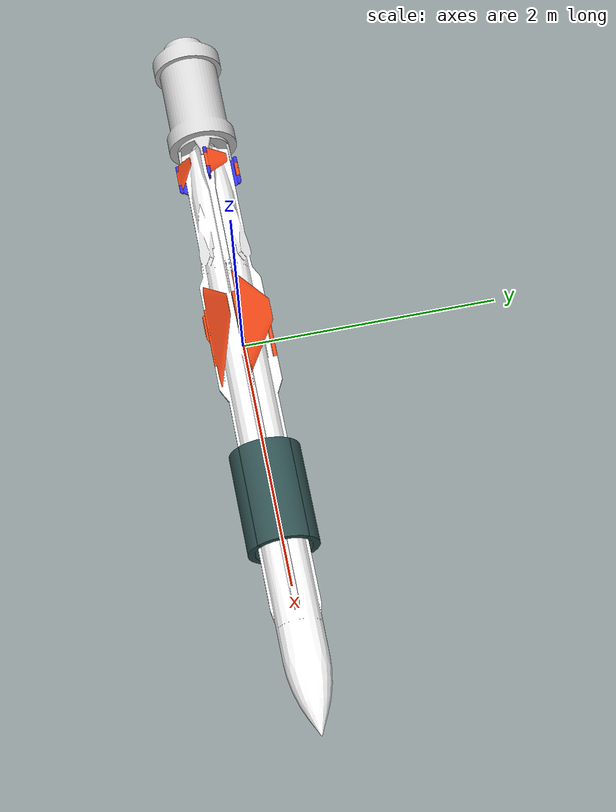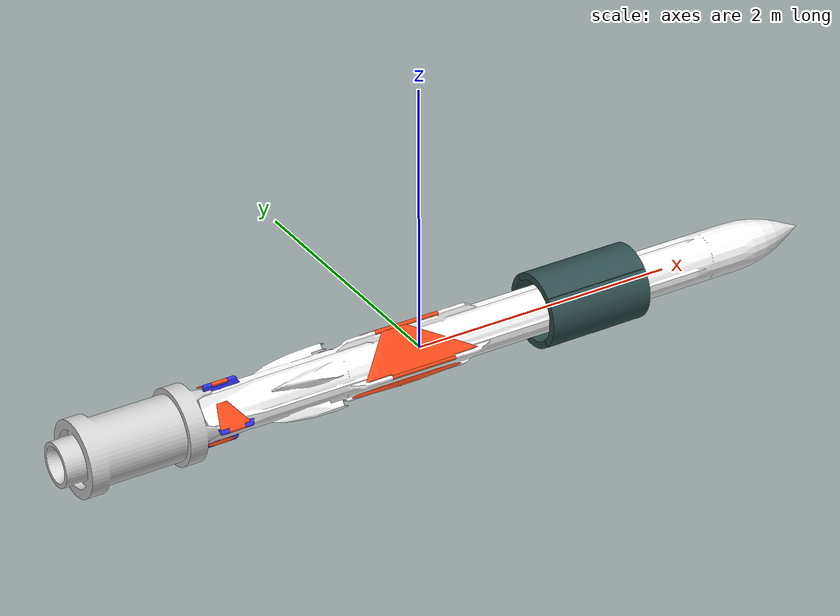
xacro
<?xml version="1.0" ?>
<robot name="ex_mm40b3" xmlns:xacro="http://www.ros.org/wiki/xacro">

<xacro:include filename="$(find ex_mm40b3_description)/urdf/materials.xacro" />
<xacro:include filename="$(find ex_mm40b3_description)/urdf/ex_mm40b3.trans" />
<xacro:include filename="$(find ex_mm40b3_description)/urdf/ex_mm40b3.gazebo" />

<link name="base_link">
  <inertial>
    <origin xyz="0.5582187363868036 -9.491428765021313e-11 -7.544864658374226e-10" rpy="0 0 0"/>
    <mass value="564.9695328358481"/>
    <inertia ixx="13.560396" iyy="1088.286862" izz="1088.286862" ixy="-0.0" iyz="0.0" ixz="0.0"/>
  </inertial>
  <visual>
    <origin xyz="0 0 0" rpy="0 0 0"/>
    <geometry>
      <mesh filename="package://ex_mm40b3_description/meshes/base_link.stl" scale="0.001 0.001 0.001"/>
    </geometry>
    <material name="white"/>
  </visual>
  <collision>
    <origin xyz="0 0 0" rpy="0 0 0"/>
    <geometry>
      <mesh filename="package://ex_mm40b3_description/meshes/base_link.stl" scale="0.001 0.001 0.001"/>
    </geometry>
  </collision>
</link>

<link name="FinHolder_1">
  <inertial>
    <origin xyz="0.01198993428751427 3.495693953659855e-06 0.03520370329433853" rpy="0 0 0"/>
    <mass value="0.6136418967408529"/>
    <inertia ixx="0.000219" iyy="0.004162" izz="0.003989" ixy="-0.0" iyz="-0.0" ixz="3.8e-05"/>
  </inertial>
  <visual>
    <origin xyz="1.561764 0.0 -0.18" rpy="0 0 0"/>
    <geometry>
      <mesh filename="package://ex_mm40b3_description/meshes/FinHolder_1.stl" scale="0.001 0.001 0.001"/>
    </geometry>
    <material name="blue"/>
  </visual>
  <collision>
    <origin xyz="1.561764 0.0 -0.18" rpy="0 0 0"/>
    <geometry>
      <mesh filename="package://ex_mm40b3_description/meshes/FinHolder_1.stl" scale="0.001 0.001 0.001"/>
    </geometry>
  </collision>
</link>

<link name="FinHolder_4">
  <inertial>
    <origin xyz="0.01198993428751427 -0.03520370414373866 3.495034387886701e-06" rpy="0 0 0"/>
    <mass value="0.6136418967408529"/>
    <inertia ixx="0.000219" iyy="0.003989" izz="0.004162" ixy="-3.8e-05" iyz="0.0" ixz="-0.0"/>
  </inertial>
  <visual>
    <origin xyz="1.561764 0.18 0.0" rpy="0 0 0"/>
    <geometry>
      <mesh filename="package://ex_mm40b3_description/meshes/FinHolder_4.stl" scale="0.001 0.001 0.001"/>
    </geometry>
    <material name="blue"/>
  </visual>
  <collision>
    <origin xyz="1.561764 0.18 0.0" rpy="0 0 0"/>
    <geometry>
      <mesh filename="package://ex_mm40b3_description/meshes/FinHolder_4.stl" scale="0.001 0.001 0.001"/>
    </geometry>
  </collision>
</link>

<link name="FinHolder_3">
  <inertial>
    <origin xyz="0.01198993428751427 -3.4958837879403273e-06 -0.035203704803304314" rpy="0 0 0"/>
    <mass value="0.6136418967408529"/>
    <inertia ixx="0.000219" iyy="0.004162" izz="0.003989" ixy="0.0" iyz="-0.0" ixz="-3.8e-05"/>
  </inertial>
  <visual>
    <origin xyz="1.561764 0.0 0.18" rpy="0 0 0"/>
    <geometry>
      <mesh filename="package://ex_mm40b3_description/meshes/FinHolder_3.stl" scale="0.001 0.001 0.001"/>
    </geometry>
    <material name="blue"/>
  </visual>
  <collision>
    <origin xyz="1.561764 0.0 0.18" rpy="0 0 0"/>
    <geometry>
      <mesh filename="package://ex_mm40b3_description/meshes/FinHolder_3.stl" scale="0.001 0.001 0.001"/>
    </geometry>
  </collision>
</link>

<link name="FinHolder_2">
  <inertial>
    <origin xyz="0.01198993428751427 0.035203703953904264 -3.496543353653529e-06" rpy="0 0 0"/>
    <mass value="0.6136418967408529"/>
    <inertia ixx="0.000219" iyy="0.003989" izz="0.004162" ixy="3.8e-05" iyz="0.0" ixz="0.0"/>
  </inertial>
  <visual>
    <origin xyz="1.561764 -0.18 0.0" rpy="0 0 0"/>
    <geometry>
      <mesh filename="package://ex_mm40b3_description/meshes/FinHolder_2.stl" scale="0.001 0.001 0.001"/>
    </geometry>
    <material name="blue"/>
  </visual>
  <collision>
    <origin xyz="1.561764 -0.18 0.0" rpy="0 0 0"/>
    <geometry>
      <mesh filename="package://ex_mm40b3_description/meshes/FinHolder_2.stl" scale="0.001 0.001 0.001"/>
    </geometry>
  </collision>
</link>

<link name="Wing1_1">
  <inertial>
    <origin xyz="-0.04066620765985293 0.0807449272160705 -0.05243595158558506" rpy="0 0 0"/>
    <mass value="7.941525705671481"/>
    <inertia ixx="0.045859" iyy="0.280396" izz="0.29884" ixy="0.016465" iyz="0.020713" ixz="-0.010693"/>
  </inertial>
  <visual>
    <origin xyz="0.108536 0.0 -0.231018" rpy="0 0 0"/>
    <geometry>
      <mesh filename="package://ex_mm40b3_description/meshes/Wing1_1.stl" scale="0.001 0.001 0.001"/>
    </geometry>
    <material name="orange"/>
  </visual>
  <collision>
    <origin xyz="0.108536 0.0 -0.231018" rpy="0 0 0"/>
    <geometry>
      <mesh filename="package://ex_mm40b3_description/meshes/Wing1_1.stl" scale="0.001 0.001 0.001"/>
    </geometry>
  </collision>
</link>

<link name="Booster_1">
  <inertial>
    <origin xyz="-0.5309883305776795 1.2931271704902409e-09 7.783320420974786e-11" rpy="0 0 0"/>
    <mass value="138.76341026969325"/>
    <inertia ixx="6.064544" iyy="17.450475" izz="17.450475" ixy="-0.0" iyz="0.0" ixz="-0.0"/>
  </inertial>
  <visual>
    <origin xyz="1.741776 0.0 0.0" rpy="0 0 0"/>
    <geometry>
      <mesh filename="package://ex_mm40b3_description/meshes/Booster_1.stl" scale="0.001 0.001 0.001"/>
    </geometry>
    <material name="grey"/>
  </visual>
  <collision>
    <origin xyz="1.741776 0.0 0.0" rpy="0 0 0"/>
    <geometry>
      <mesh filename="package://ex_mm40b3_description/meshes/Booster_1.stl" scale="0.001 0.001 0.001"/>
    </geometry>
  </collision>
</link>

<link name="Wing1_2">
  <inertial>
    <origin xyz="-0.040666207659853376 -0.05189131189100127 -0.079906257497525" rpy="0 0 0"/>
    <mass value="7.941525705671481"/>
    <inertia ixx="0.045859" iyy="0.29884" izz="0.280396" ixy="-0.010693" iyz="-0.020713" ixz="-0.016465"/>
  </inertial>
  <visual>
    <origin xyz="0.108536 -0.231018 0.0" rpy="0 0 0"/>
    <geometry>
      <mesh filename="package://ex_mm40b3_description/meshes/Wing1_2.stl" scale="0.001 0.001 0.001"/>
    </geometry>
    <material name="orange"/>
  </visual>
  <collision>
    <origin xyz="0.108536 -0.231018 0.0" rpy="0 0 0"/>
    <geometry>
      <mesh filename="package://ex_mm40b3_description/meshes/Wing1_2.stl" scale="0.001 0.001 0.001"/>
    </geometry>
  </collision>
</link>

<link name="Wing1_3">
  <inertial>
    <origin xyz="-0.04066620765985307 -0.07990625683795603 0.051891311041601024" rpy="0 0 0"/>
    <mass value="7.941525705671481"/>
    <inertia ixx="0.045859" iyy="0.280396" izz="0.29884" ixy="-0.016465" iyz="0.020713" ixz="0.010693"/>
  </inertial>
  <visual>
    <origin xyz="0.108536 0.0 0.231018" rpy="0 0 0"/>
    <geometry>
      <mesh filename="package://ex_mm40b3_description/meshes/Wing1_3.stl" scale="0.001 0.001 0.001"/>
    </geometry>
    <material name="orange"/>
  </visual>
  <collision>
    <origin xyz="0.108536 0.0 0.231018" rpy="0 0 0"/>
    <geometry>
      <mesh filename="package://ex_mm40b3_description/meshes/Wing1_3.stl" scale="0.001 0.001 0.001"/>
    </geometry>
  </collision>
</link>

<link name="Wing1_4">
  <inertial>
    <origin xyz="-0.04066620765985285 0.051891311701170034 0.07990625598855573" rpy="0 0 0"/>
    <mass value="7.941525705671481"/>
    <inertia ixx="0.045859" iyy="0.29884" izz="0.280396" ixy="0.010693" iyz="-0.020713" ixz="0.016465"/>
  </inertial>
  <visual>
    <origin xyz="0.108536 0.231018 0.0" rpy="0 0 0"/>
    <geometry>
      <mesh filename="package://ex_mm40b3_description/meshes/Wing1_4.stl" scale="0.001 0.001 0.001"/>
    </geometry>
    <material name="orange"/>
  </visual>
  <collision>
    <origin xyz="0.108536 0.231018 0.0" rpy="0 0 0"/>
    <geometry>
      <mesh filename="package://ex_mm40b3_description/meshes/Wing1_4.stl" scale="0.001 0.001 0.001"/>
    </geometry>
  </collision>
</link>

<link name="Holder_1">
  <inertial>
    <origin xyz="-0.1999999917328792 -9.490927239922491e-11 0.03608121241836992" rpy="0 0 0"/>
    <mass value="12.085489344125179"/>
    <inertia ixx="0.161772" iyy="0.69521" izz="0.836017" ixy="-0.0" iyz="-0.0" ixz="-0.0"/>
  </inertial>
  <visual>
    <origin xyz="-1.514695 0.0 -0.187374" rpy="0 0 0"/>
    <geometry>
      <mesh filename="package://ex_mm40b3_description/meshes/Holder_1.stl" scale="0.001 0.001 0.001"/>
    </geometry>
    <material name="darkgrey"/>
  </visual>
  <collision>
    <origin xyz="-1.514695 0.0 -0.187374" rpy="0 0 0"/>
    <geometry>
      <mesh filename="package://ex_mm40b3_description/meshes/Holder_1.stl" scale="0.001 0.001 0.001"/>
    </geometry>
  </collision>
</link>

<link name="Holder_2">
  <inertial>
    <origin xyz="-0.1999999917328792 -0.03608121241836992 -9.490925871653939e-11" rpy="0 0 0"/>
    <mass value="12.085489344125179"/>
    <inertia ixx="0.161772" iyy="0.836017" izz="0.69521" ixy="0.0" iyz="0.0" ixz="-0.0"/>
  </inertial>
  <visual>
    <origin xyz="-1.514695 0.187374 0.0" rpy="0 0 0"/>
    <geometry>
      <mesh filename="package://ex_mm40b3_description/meshes/Holder_2.stl" scale="0.001 0.001 0.001"/>
    </geometry>
    <material name="darkgrey"/>
  </visual>
  <collision>
    <origin xyz="-1.514695 0.187374 0.0" rpy="0 0 0"/>
    <geometry>
      <mesh filename="package://ex_mm40b3_description/meshes/Holder_2.stl" scale="0.001 0.001 0.001"/>
    </geometry>
  </collision>
</link>

<link name="Holder_3">
  <inertial>
    <origin xyz="-0.1999999917328792 9.490924503385386e-11 -0.03608121241836992" rpy="0 0 0"/>
    <mass value="12.085489344125179"/>
    <inertia ixx="0.161772" iyy="0.69521" izz="0.836017" ixy="0.0" iyz="-0.0" ixz="0.0"/>
  </inertial>
  <visual>
    <origin xyz="-1.514695 0.0 0.187374" rpy="0 0 0"/>
    <geometry>
      <mesh filename="package://ex_mm40b3_description/meshes/Holder_3.stl" scale="0.001 0.001 0.001"/>
    </geometry>
    <material name="darkgrey"/>
  </visual>
  <collision>
    <origin xyz="-1.514695 0.0 0.187374" rpy="0 0 0"/>
    <geometry>
      <mesh filename="package://ex_mm40b3_description/meshes/Holder_3.stl" scale="0.001 0.001 0.001"/>
    </geometry>
  </collision>
</link>

<link name="Holder_4">
  <inertial>
    <origin xyz="-0.1999999917328792 0.03608121241836992 9.490923135116832e-11" rpy="0 0 0"/>
    <mass value="12.085489344125179"/>
    <inertia ixx="0.161772" iyy="0.836017" izz="0.69521" ixy="-0.0" iyz="-0.0" ixz="0.0"/>
  </inertial>
  <visual>
    <origin xyz="-1.514695 -0.187374 0.0" rpy="0 0 0"/>
    <geometry>
      <mesh filename="package://ex_mm40b3_description/meshes/Holder_4.stl" scale="0.001 0.001 0.001"/>
    </geometry>
    <material name="darkgrey"/>
  </visual>
  <collision>
    <origin xyz="-1.514695 -0.187374 0.0" rpy="0 0 0"/>
    <geometry>
      <mesh filename="package://ex_mm40b3_description/meshes/Holder_4.stl" scale="0.001 0.001 0.001"/>
    </geometry>
  </collision>
</link>

<link name="Fin_1">
  <inertial>
    <origin xyz="-0.015670038509134843 0.05105851518613127 -0.033157788278729644" rpy="0 0 0"/>
    <mass value="1.1914641784690367"/>
    <inertia ixx="0.003045" iyy="0.003419" izz="0.004631" ixy="0.000707" iyz="0.00136" ixz="-0.000459"/>
  </inertial>
  <visual>
    <origin xyz="1.561764 0.0 -0.235" rpy="0 0 0"/>
    <geometry>
      <mesh filename="package://ex_mm40b3_description/meshes/Fin_1.stl" scale="0.001 0.001 0.001"/>
    </geometry>
    <material name="orange"/>
  </visual>
  <collision>
    <origin xyz="1.561764 0.0 -0.235" rpy="0 0 0"/>
    <geometry>
      <mesh filename="package://ex_mm40b3_description/meshes/Fin_1.stl" scale="0.001 0.001 0.001"/>
    </geometry>
  </collision>
</link>

<link name="Fin_2">
  <inertial>
    <origin xyz="-0.015670038509135287 -0.03315778761916369 -0.05105880996392321" rpy="0 0 0"/>
    <mass value="1.1914641784690367"/>
    <inertia ixx="0.003045" iyy="0.004631" izz="0.003419" ixy="-0.000459" iyz="-0.00136" ixz="-0.000707"/>
  </inertial>
  <visual>
    <origin xyz="1.561764 -0.235 1.7e-05" rpy="0 0 0"/>
    <geometry>
      <mesh filename="package://ex_mm40b3_description/meshes/Fin_2.stl" scale="0.001 0.001 0.001"/>
    </geometry>
    <material name="orange"/>
  </visual>
  <collision>
    <origin xyz="1.561764 -0.235 1.7e-05" rpy="0 0 0"/>
    <geometry>
      <mesh filename="package://ex_mm40b3_description/meshes/Fin_2.stl" scale="0.001 0.001 0.001"/>
    </geometry>
  </collision>
</link>

<link name="Fin_3">
  <inertial>
    <origin xyz="-0.01567003850913551 -0.051058515375965514 0.033157786769763664" rpy="0 0 0"/>
    <mass value="1.1914641784690367"/>
    <inertia ixx="0.003045" iyy="0.003419" izz="0.004631" ixy="-0.000707" iyz="0.00136" ixz="0.000459"/>
  </inertial>
  <visual>
    <origin xyz="1.561764 0.0 0.235" rpy="0 0 0"/>
    <geometry>
      <mesh filename="package://ex_mm40b3_description/meshes/Fin_3.stl" scale="0.001 0.001 0.001"/>
    </geometry>
    <material name="orange"/>
  </visual>
  <collision>
    <origin xyz="1.561764 0.0 0.235" rpy="0 0 0"/>
    <geometry>
      <mesh filename="package://ex_mm40b3_description/meshes/Fin_3.stl" scale="0.001 0.001 0.001"/>
    </geometry>
  </collision>
</link>

<link name="Fin_4">
  <inertial>
    <origin xyz="-0.015670038509134843 0.03315778742932951 0.051058514526565395" rpy="0 0 0"/>
    <mass value="1.1914641784690367"/>
    <inertia ixx="0.003045" iyy="0.004631" izz="0.003419" ixy="0.000459" iyz="-0.00136" ixz="0.000707"/>
  </inertial>
  <visual>
    <origin xyz="1.561764 0.235 0.0" rpy="0 0 0"/>
    <geometry>
      <mesh filename="package://ex_mm40b3_description/meshes/Fin_4.stl" scale="0.001 0.001 0.001"/>
    </geometry>
    <material name="orange"/>
  </visual>
  <collision>
    <origin xyz="1.561764 0.235 0.0" rpy="0 0 0"/>
    <geometry>
      <mesh filename="package://ex_mm40b3_description/meshes/Fin_4.stl" scale="0.001 0.001 0.001"/>
    </geometry>
  </collision>
</link>

<joint name="fins_rev1" type="revolute">
  <origin xyz="-1.561764 0.0 0.18" rpy="0 0 0"/>
  <parent link="base_link"/>
  <child link="FinHolder_1"/>
  <axis xyz="-0.0 -0.0 1.0"/>
  <limit upper="0.349066" lower="-0.349066" effort="100" velocity="100"/>
</joint>

<joint name="fins_rev4" type="revolute">
  <origin xyz="-1.561764 -0.18 0.0" rpy="0 0 0"/>
  <parent link="base_link"/>
  <child link="FinHolder_4"/>
  <axis xyz="-0.0 -1.0 -0.0"/>
  <limit upper="0.349066" lower="-0.349066" effort="100" velocity="100"/>
</joint>

<joint name="fins_rev3" type="revolute">
  <origin xyz="-1.561764 0.0 -0.18" rpy="0 0 0"/>
  <parent link="base_link"/>
  <child link="FinHolder_3"/>
  <axis xyz="-0.0 0.0 -1.0"/>
  <limit upper="0.349066" lower="-0.349066" effort="100" velocity="100"/>
</joint>

<joint name="fins_rev2" type="revolute">
  <origin xyz="-1.561764 0.18 0.0" rpy="0 0 0"/>
  <parent link="base_link"/>
  <child link="FinHolder_2"/>
  <axis xyz="-0.0 1.0 0.0"/>
  <limit upper="0.349066" lower="-0.349066" effort="100" velocity="100"/>
</joint>

<joint name="wings_fold1" type="revolute">
  <origin xyz="-0.108536 0.0 0.231018" rpy="0 0 0"/>
  <parent link="base_link"/>
  <child link="Wing1_1"/>
  <axis xyz="1.0 -0.0 -0.0"/>
  <limit upper="2.146755" lower="0.0" effort="100" velocity="100"/>
</joint>

<joint name="booster_fixing" type="fixed">
  <origin xyz="-1.741776 0.0 0.0" rpy="0 0 0"/>
  <parent link="base_link"/>
  <child link="Booster_1"/>
</joint>

<joint name="wings_fold2" type="revolute">
  <origin xyz="-0.108536 0.231018 0.0" rpy="0 0 0"/>
  <parent link="base_link"/>
  <child link="Wing1_2"/>
  <axis xyz="1.0 0.0 -0.0"/>
  <limit upper="2.146755" lower="0.0" effort="100" velocity="100"/>
</joint>

<joint name="wings_fold3" type="revolute">
  <origin xyz="-0.108536 0.0 -0.231018" rpy="0 0 0"/>
  <parent link="base_link"/>
  <child link="Wing1_3"/>
  <axis xyz="1.0 0.0 -0.0"/>
  <limit upper="2.146755" lower="0.0" effort="100" velocity="100"/>
</joint>

<joint name="wings_fold4" type="revolute">
  <origin xyz="-0.108536 -0.231018 0.0" rpy="0 0 0"/>
  <parent link="base_link"/>
  <child link="Wing1_4"/>
  <axis xyz="1.0 -0.0 -0.0"/>
  <limit upper="2.146755" lower="0.0" effort="100" velocity="100"/>
</joint>

<joint name="HolderJoint1" type="fixed">
  <origin xyz="1.514695 0.0 0.187374" rpy="0 0 0"/>
  <parent link="base_link"/>
  <child link="Holder_1"/>
</joint>

<joint name="HolderJoint2" type="fixed">
  <origin xyz="1.514695 -0.187374 0.0" rpy="0 0 0"/>
  <parent link="base_link"/>
  <child link="Holder_2"/>
</joint>

<joint name="HolderJoint3" type="fixed">
  <origin xyz="1.514695 0.0 -0.187374" rpy="0 0 0"/>
  <parent link="base_link"/>
  <child link="Holder_3"/>
</joint>

<joint name="HolderJoint4" type="fixed">
  <origin xyz="1.514695 0.187374 0.0" rpy="0 0 0"/>
  <parent link="base_link"/>
  <child link="Holder_4"/>
</joint>

<joint name="fin_fold1" type="revolute">
  <origin xyz="0.0 0.0 0.055" rpy="0 0 0"/>
  <parent link="FinHolder_1"/>
  <child link="Fin_1"/>
  <axis xyz="1.0 -0.0 0.0"/>
  <limit upper="2.146755" lower="0.0" effort="100" velocity="100"/>
</joint>

<joint name="fin_fold2" type="revolute">
  <origin xyz="0.0 0.055 -1.7e-05" rpy="0 0 0"/>
  <parent link="FinHolder_2"/>
  <child link="Fin_2"/>
  <axis xyz="1.0 -0.0 -0.0"/>
  <limit upper="2.146755" lower="0.0" effort="100" velocity="100"/>
</joint>

<joint name="fin_fold3" type="revolute">
  <origin xyz="0.0 0.0 -0.055" rpy="0 0 0"/>
  <parent link="FinHolder_3"/>
  <child link="Fin_3"/>
  <axis xyz="1.0 -0.0 0.0"/>
  <limit upper="2.146755" lower="0.0" effort="100" velocity="100"/>
</joint>

<joint name="fin_fold4" type="revolute">
  <origin xyz="0.0 -0.055 0.0" rpy="0 0 0"/>
  <parent link="FinHolder_4"/>
  <child link="Fin_4"/>
  <axis xyz="1.0 -0.0 -0.0"/>
  <limit upper="2.146755" lower="0.0" effort="100" velocity="100"/>
</joint>

</robot>

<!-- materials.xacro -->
<robot name="ex_mm40b3" xmlns:xacro="http://www.ros.org/wiki/xacro" >

  <material name="grey">
    <color rgba="${211/256} ${211/256} ${211/256} 1.0"/>
  </material>

  <material name="darkgrey">
    <color rgba="${47/255} ${79/255} ${79/255} 1.000"/>
  </material>

  <material name="silver">
    <color rgba="0.700 0.700 0.700 1.000"/>
  </material>

  <material name="white">
    <color rgba="1 1 1 1" />
  </material>

  <material name="orange">
    <color rgba="1 0.3 0.1 1"/>
  </material>

  <material name="blue">
    <color rgba="0.2 0.2 1 1"/>
  </material>

  <material name="red">
    <color rgba="0.8 0 0 1"/>
  </material>

  <material name="green">
    <color rgba="0.0 1 0.0 1"/>
  </material>

  <material name="black">
    <color rgba="0 0 0 1"/>
  </material>

</robot>
